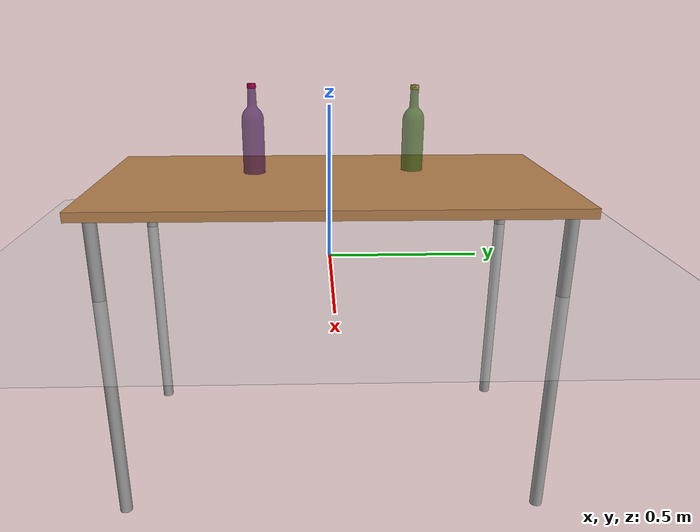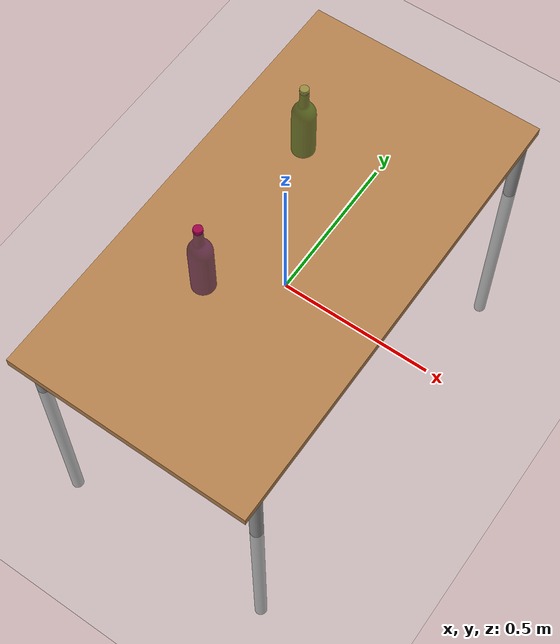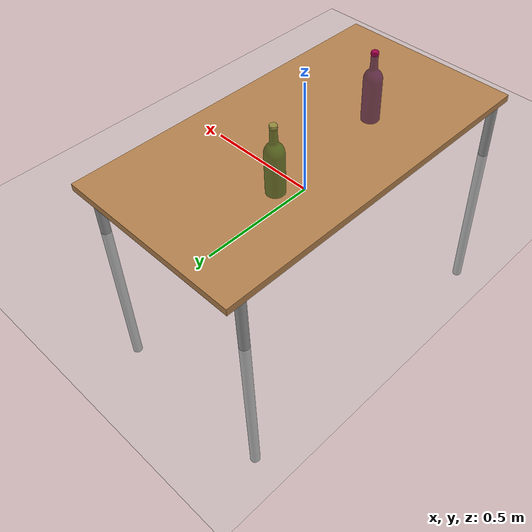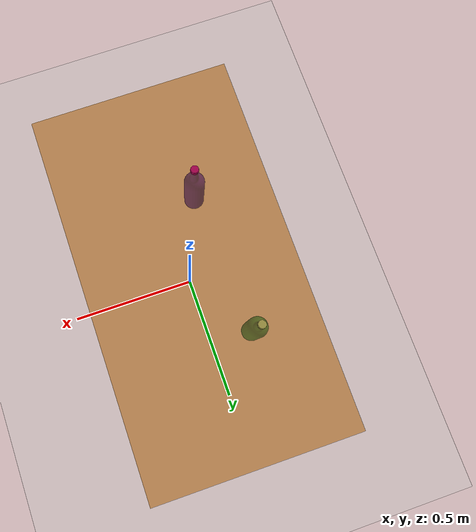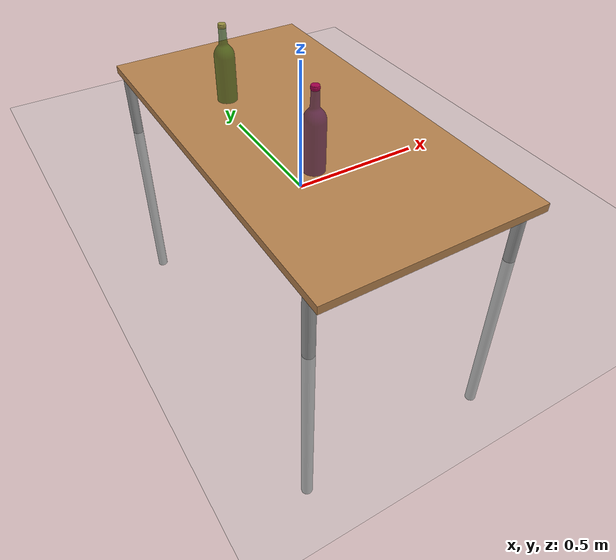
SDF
<sdf version="1.4">
 <world name="default">
  <include><uri>model://ground_plane</uri></include>
  <include><uri>model://sun</uri></include>
  <include><uri>model://table</uri><pose>0 0 -0.75 0 0 1.57</pose></include>
  <include><uri>model://bottle_white_wine</uri><pose>-0.1 0.25 0.25 0 0 1.57</pose></include>
  <include><uri>model://bottle_red_wine</uri><pose>-0.1 -0.25 0.25 0 0 1.57</pose></include>
 </world>
</sdf>

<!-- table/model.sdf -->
<sdf version="1.5">
  <model name="table">
    <static>true</static>
    <link name="link">
      <collision name="surface">
        <pose>0 0 1.0 0 0 0</pose>
        <geometry>
          <box>
            <size>1.5 0.8 0.03</size>
          </box>
        </geometry>
        <surface>
          <friction>
            <ode>
              <mu>0.6</mu>
              <mu2>0.6</mu2>
            </ode>
          </friction>
        </surface>
      </collision>
      <visual name="visual1">
        <pose>0 0 1.0 0 0 0</pose>
        <geometry>
          <box>
            <size>1.5 0.8 0.03</size>
          </box>
        </geometry>
        <material>
          <script>
            <uri>model://media/materials/scripts/gazebo.material</uri>
            <name>Gazebo/Wood</name>
          </script>
        </material>
      </visual>
      <collision name="front_left_leg">
        <pose>0.68 0.38 0.5 0 0 0</pose>
        <geometry>
          <cylinder>
            <radius>0.02</radius>
            <length>1.0</length>
          </cylinder>
        </geometry>
      </collision>
      <visual name="front_left_leg">
        <pose>0.68 0.38 0.5 0 0 0</pose>
        <geometry>
          <cylinder>
            <radius>0.02</radius>
            <length>1.0</length>
          </cylinder>
        </geometry>
        <material>
          <script>
            <uri>model://media/materials/scripts/gazebo.material</uri>
            <name>Gazebo/Grey</name>
          </script>
        </material>
      </visual>
      <collision name="front_right_leg">
        <pose>0.68 -0.38 0.5 0 0 0</pose>
        <geometry>
          <cylinder>
            <radius>0.02</radius>
            <length>1.0</length>
          </cylinder>
        </geometry>
      </collision>
      <visual name="front_right_leg">
        <pose>0.68 -0.38 0.5 0 0 0</pose>
        <geometry>
          <cylinder>
            <radius>0.02</radius>
            <length>1.0</length>
          </cylinder>
        </geometry>
        <material>
          <script>
            <uri>model://media/materials/scripts/gazebo.material</uri>
            <name>Gazebo/Grey</name>
          </script>
        </material>
      </visual>
      <collision name="back_right_leg">
        <pose>-0.68 -0.38 0.5 0 0 0</pose>
        <geometry>
          <cylinder>
            <radius>0.02</radius>
            <length>1.0</length>
          </cylinder>
        </geometry>
      </collision>
      <visual name="back_right_leg">
        <pose>-0.68 -0.38 0.5 0 0 0</pose>
        <geometry>
          <cylinder>
            <radius>0.02</radius>
            <length>1.0</length>
          </cylinder>
        </geometry>
        <material>
          <script>
            <uri>model://media/materials/scripts/gazebo.material</uri>
            <name>Gazebo/Grey</name>
          </script>
        </material>
      </visual>
      <collision name="back_left_leg">
        <pose>-0.68 0.38 0.5 0 0 0</pose>
        <geometry>
          <cylinder>
            <radius>0.02</radius>
            <length>1.0</length>
          </cylinder>
        </geometry>
      </collision>
      <visual name="back_left_leg">
        <pose>-0.68 0.38 0.5 0 0 0</pose>
        <geometry>
          <cylinder>
            <radius>0.02</radius>
            <length>1.0</length>
          </cylinder>
        </geometry>
        <material>
          <script>
            <uri>model://media/materials/scripts/gazebo.material</uri>
            <name>Gazebo/Grey</name>
          </script>
        </material>
      </visual>
    </link>
  </model>
</sdf>

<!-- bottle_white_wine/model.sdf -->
<sdf version='1.6'>
  <model name='bottle_white_wine'>
    <link name='link_24'>
      <pose frame=''>0.001183 0.001164 -0.006085 0 -0 0</pose>
       <visual name='visual'>
          <geometry>
          <mesh>
            <uri>model://bottle_white_wine/meshes/bottle.dae</uri>
            <scale>1 1 1</scale>
          </mesh>
        </geometry>
        <material>
          <lighting>1</lighting>
          <script>
            <uri>file://media/materials/scripts/gazebo.material</uri>
            <name>Gazebo/Grey</name>
          </script>
          <ambient>0.117 0.352 0.027 1</ambient>
          <diffuse>0.117 0.352 0.027 1</diffuse>
          <specular>0.01 0.01 0.01 1</specular>
          <emissive>0 0 0 1</emissive>
          <shader type='vertex'>
            <normal_map>__default__</normal_map>
          </shader>
        </material>
        <cast_shadows>1</cast_shadows>
        <transparency>0.4</transparency>
      </visual>
      <collision name='collision'>
        <laser_retro>0</laser_retro>
        <max_contacts>10</max_contacts>
        <pose frame=''>0 0 0 0 -0 0</pose>
        <geometry>
          <mesh>
            <uri>model://bottle_white_wine/meshes/bottle.dae</uri>
            <scale>1 1 1</scale>
          </mesh>
        </geometry>
       </collision>
    </link>
    <link name='link_26'>
      <pose frame=''>0.001183 0.001164 -0.006085 0 -0 0</pose>
       <visual name='visual'>
        <geometry>
          <mesh>
            <uri>model://bottle_white_wine/meshes/cap.dae</uri>
            <scale>1 1 1</scale>
          </mesh>
        </geometry>
        <material>
          <lighting>1</lighting>
          <ambient>0.576 0.541 0.239 1</ambient>
          <diffuse>0.576 0.541 0.239 1</diffuse>
          <specular>0.01 0.01 0.01 1</specular>
          <emissive>0 0 0 1</emissive>
          <shader type='vertex'>
            <normal_map>__default__</normal_map>
          </shader>
        </material>
        <cast_shadows>1</cast_shadows>
        <transparency>0</transparency>
      </visual>
      <collision name='collision'>
        <laser_retro>0</laser_retro>
        <max_contacts>10</max_contacts>
        <pose frame=''>0 0 0 0 -0 0</pose>
        <geometry>
          <mesh>
            <uri>model://bottle_white_wine/meshes/cap.dae</uri>
            <scale>1 1 1</scale>
          </mesh>
        </geometry>
       </collision>
    </link>
    <static>1</static>
    <allow_auto_disable>1</allow_auto_disable>
  </model>
</sdf>

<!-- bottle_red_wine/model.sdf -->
<sdf version='1.6'>
  <model name='bottle_red_wine'>
    <link name='link_22'>
      <pose frame=''>-0.038814 -0.033806 0.002754 0 -0 0</pose>
        <visual name='visual'>
        <pose frame=''>0 0 0 0 -0 0</pose>
        <geometry>
          <mesh>
            <uri>model://bottle_red_wine/meshes/bottle.dae</uri>
            <scale>1 1 1</scale>
          </mesh>
        </geometry>
        <material>
          <lighting>1</lighting>
          <ambient>0.215 0 0.305 1</ambient>
          <diffuse>0.215 0 0.305 1</diffuse>
          <specular>0.01 0.01 0.01 1</specular>
          <emissive>0 0 0 1</emissive>
          <shader type='vertex'>
            <normal_map>__default__</normal_map>
          </shader>
        </material>
        <cast_shadows>1</cast_shadows>
        <transparency>0.4</transparency>
      </visual>
      <collision name='collision'>
        <laser_retro>0</laser_retro>
        <max_contacts>10</max_contacts>
        <pose frame=''>0 0 0 0 -0 0</pose>
        <geometry>
          <mesh>
            <uri>model://bottle_red_wine/meshes/bottle.dae</uri>
            <scale>1 1 1</scale>
          </mesh>
        </geometry>
       </collision>
    </link>
    <link name='link_23'>
      <pose frame=''> -0.038814 -0.033806 0.002754 0 -0 0</pose>
      <inertial>
        <mass>1</mass>
        <inertia>
          <ixx>0.166667</ixx>
          <ixy>0</ixy>
          <ixz>0</ixz>
          <iyy>0.166667</iyy>
          <iyz>0</iyz>
          <izz>0.166667</izz>
        </inertia>
        <pose frame=''>0 0 0 0 -0 0</pose>
      </inertial>
      <gravity>1</gravity>
      <self_collide>0</self_collide>
      <kinematic>0</kinematic>
      <visual name='visual'>
        <pose frame=''>0 0 0 0 -0 0</pose>
        <geometry>
          <mesh>
            <uri>model://bottle_red_wine/meshes/cap.dae</uri>
            <scale>1 1 1</scale>
          </mesh>
        </geometry>
        <material>
          <lighting>1</lighting>
          <ambient>0.623 0 0.282 1</ambient>
          <diffuse>0.623 0 0.282 1</diffuse>
          <specular>0.01 0.01 0.01 1</specular>
          <emissive>0 0 0 1</emissive>
          <shader type='vertex'>
            <normal_map>__default__</normal_map>
          </shader>
        </material>
        <cast_shadows>1</cast_shadows>
        <transparency>0</transparency>
      </visual>
      <collision name='collision'>
        <laser_retro>0</laser_retro>
        <max_contacts>10</max_contacts>
        <pose frame=''>0 0 0 0 -0 0</pose>
        <geometry>
          <mesh>
            <uri>model://bottle_red_wine/meshes/cap.dae</uri>
            <scale>1 1 1</scale>
          </mesh>
        </geometry>

      </collision>
    </link>
    <static>1</static>
    <allow_auto_disable>1</allow_auto_disable>
  </model>
</sdf>
